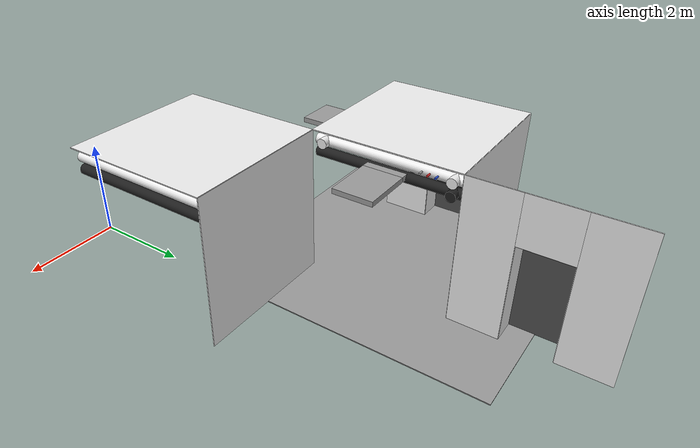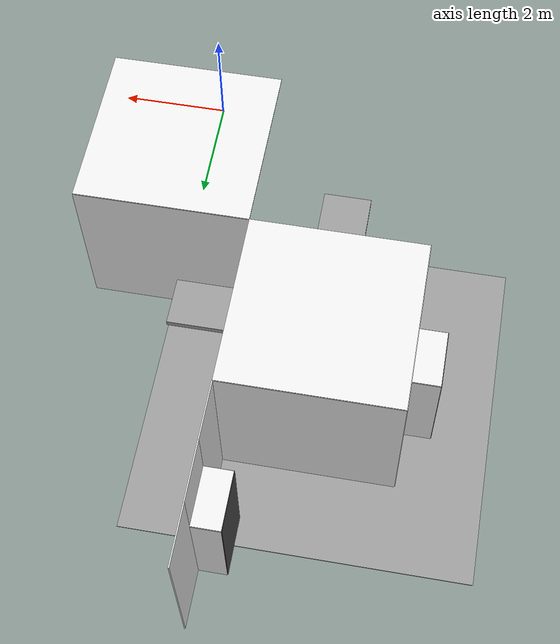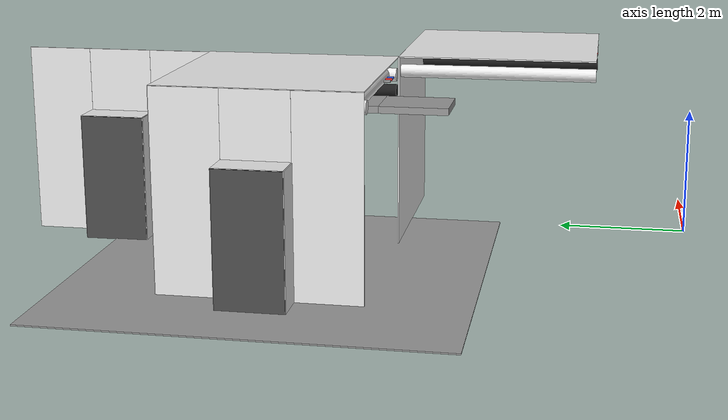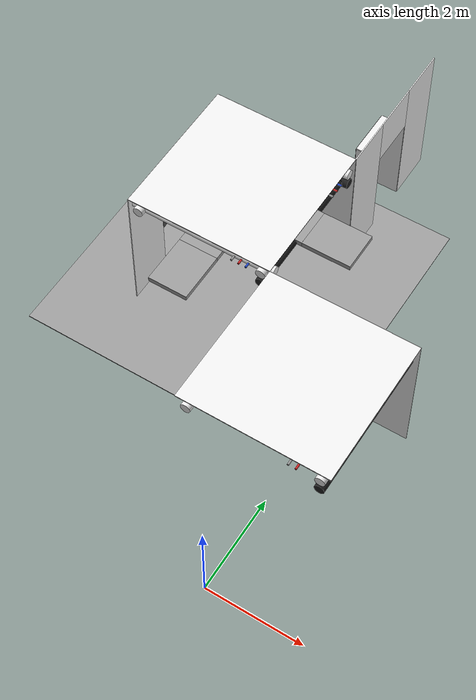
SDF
<sdf version="1.6">
 <world name="default">
  <model name="wall_front_0_1_0_3">
   <static>1</static>
   <pose>0.0 4.5 1.5 0.0 0.0 0.0</pose>
   <link name="link">
    <collision name="collision"><geometry><box><size>3.0 0.02 3.0</size></box></geometry></collision>
    <visual name="visual">
     <material>
      <script><name>Gazebo/White</name><uri>file://media/materials/scripts/gazebo.material</uri></script>
     </material>
     <geometry><box><size>3.0 0.02 3.0</size></box></geometry>
    </visual>
   </link>
  </model>
  <model name="wall_top_0_1_0_3">
   <static>1</static>
   <pose>0.0 3.0 3.0 1.57 0.0 0.0</pose>
   <link name="link">
    <collision name="collision"><geometry><box><size>3.0 0.02 3.0</size></box></geometry></collision>
    <visual name="visual">
     <material>
      <script><name>Gazebo/White</name><uri>file://media/materials/scripts/gazebo.material</uri></script>
     </material>
     <geometry><box><size>3.0 0.02 3.0</size></box></geometry>
    </visual>
   </link>
  </model>
  <model name="white_pipe_left_0_1_0_3">
   <static>1</static>
   <pose>0.0 3.0 2.76 0.0 0.0 0.0</pose>
   <link name="link_0">
    <visual name="visual">
     <pose>-1.3 0 0 1.57 0 0</pose>
     <geometry><cylinder><radius>0.1</radius><length>3.0</length></cylinder></geometry>
     <material>
      <script><uri>file://media/materials/scripts/gazebo.material</uri><name>Gazebo/White</name></script>
     </material>
    </visual>
    <collision name="collision">
     <pose>-1.3 0 0 1.57 0 0</pose>
     <geometry><cylinder><radius>0.1</radius><length>3.0</length></cylinder></geometry>
    </collision>
   </link>
  </model>
  <model name="white_pipe_right_0_1_0_3">
   <static>1</static>
   <pose>0.0 3.0 2.76 0.0 0.0 0.0</pose>
   <link name="link_0">
    <visual name="visual">
     <pose>1.3 0 0 1.57 0 0</pose>
     <geometry><cylinder><radius>0.1</radius><length>3.0</length></cylinder></geometry>
     <material>
      <script><uri>file://media/materials/scripts/gazebo.material</uri><name>Gazebo/White</name></script>
     </material>
    </visual>
    <collision name="collision">
     <pose>1.3 0 0 1.57 0 0</pose>
     <geometry><cylinder><radius>0.1</radius><length>3.0</length></cylinder></geometry>
    </collision>
   </link>
  </model>
  <model name="black_pipe_right_0_1_0_3">
   <static>1</static>
   <pose>0.0 3.0 2.76 0.0 0.0 0.0</pose>
   <link name="link_0">
    <visual name="visual">
     <pose>1.3 0 -0.25 1.57 0 0</pose>
     <geometry><cylinder><radius>0.1</radius><length>3.0</length></cylinder></geometry>
     <material>
      <script><uri>file://media/materials/scripts/gazebo.material</uri><name>Gazebo/Black</name></script>
     </material>
    </visual>
    <collision name="collision">
     <pose>1.3 0 -0.25 1.57 0 0</pose>
     <geometry><cylinder><radius>0.1</radius><length>3.0</length></cylinder></geometry>
    </collision>
   </link>
  </model>
  <model name="grey_pipe_right_0_1_0_3">
   <static>1</static>
   <pose>0.0 3.0 2.76 0.0 0.0 0.0</pose>
   <link name="link_0">
    <visual name="visual">
     <pose>0.7 0 0 1.57 0 0</pose>
     <geometry><cylinder><radius>0.02</radius><length>3.0</length></cylinder></geometry>
     <material>
      <script><uri>file://media/materials/scripts/gazebo.material</uri><name>Gazebo/Grey</name></script>
     </material>
    </visual>
    <collision name="collision">
     <pose>0.7 0 0 1.57 0 0</pose>
     <geometry><cylinder><radius>0.02</radius><length>3.0</length></cylinder></geometry>
    </collision>
   </link>
  </model>
  <model name="red_pipe_right_0_1_0_3">
   <static>1</static>
   <pose>0.0 3.0 2.76 0.0 0.0 0.0</pose>
   <link name="link_0">
    <visual name="visual">
     <pose>0.85 0 0 1.57 0 0</pose>
     <geometry><cylinder><radius>0.02</radius><length>3.0</length></cylinder></geometry>
     <material>
      <script><uri>file://media/materials/scripts/gazebo.material</uri><name>Gazebo/Red</name></script>
     </material>
    </visual>
    <collision name="collision">
     <pose>0.85 0 0 1.57 0 0</pose>
     <geometry><cylinder><radius>0.02</radius><length>3.0</length></cylinder></geometry>
    </collision>
   </link>
  </model>
  <model name="ceiling_1_-1_1_1_2">
   <pose>-3.0 4.0 2.55 0.0 0.0 3.14</pose>
   <link name="link_1">
    <visual name="visual">
     <geometry><box><size>0.8 1 0.1</size></box></geometry>
     <material>
      <script><uri>file://media/materials/scripts/gazebo.material</uri><name>Gazebo/Grey</name></script>
     </material>
    </visual>
    <collision name="collision"><geometry><box><size>0.8 1 0.1</size></box></geometry></collision>
   </link>
   <static>1</static>
  </model>
  <model name="wall_front_-1_2_0_2">
   <static>1</static>
   <pose>-3.0 7.5 1.5 0.0 0.0 0.0</pose>
   <link name="link">
    <collision name="collision"><geometry><box><size>3.0 0.02 3.0</size></box></geometry></collision>
    <visual name="visual">
     <material>
      <script><name>Gazebo/White</name><uri>file://media/materials/scripts/gazebo.material</uri></script>
     </material>
     <geometry><box><size>3.0 0.02 3.0</size></box></geometry>
    </visual>
   </link>
  </model>
  <model name="wall_top_-1_2_0_2">
   <static>1</static>
   <pose>-3.0 6.0 3.0 1.57 0.0 0.0</pose>
   <link name="link">
    <collision name="collision"><geometry><box><size>3.0 0.02 3.0</size></box></geometry></collision>
    <visual name="visual">
     <material>
      <script><name>Gazebo/White</name><uri>file://media/materials/scripts/gazebo.material</uri></script>
     </material>
     <geometry><box><size>3.0 0.02 3.0</size></box></geometry>
    </visual>
   </link>
  </model>
  <model name="ceiling_1_-1_2_0_2">
   <pose>-3.0 5.0 2.55 0.0 0.0 0.0</pose>
   <link name="link_1">
    <visual name="visual">
     <geometry><box><size>0.8 1 0.1</size></box></geometry>
     <material>
      <script><uri>file://media/materials/scripts/gazebo.material</uri><name>Gazebo/Grey</name></script>
     </material>
    </visual>
    <collision name="collision"><geometry><box><size>0.8 1 0.1</size></box></geometry></collision>
   </link>
   <static>1</static>
  </model>
  <model name="ceiling_1_-1_2_1_2">
   <pose>-2.0 6.0 2.55 0.0 0.0 1.57</pose>
   <link name="link_1">
    <visual name="visual">
     <geometry><box><size>0.8 1 0.1</size></box></geometry>
     <material>
      <script><uri>file://media/materials/scripts/gazebo.material</uri><name>Gazebo/Grey</name></script>
     </material>
    </visual>
    <collision name="collision"><geometry><box><size>0.8 1 0.1</size></box></geometry></collision>
   </link>
   <static>1</static>
  </model>
  <model name="white_pipe_left_-1_2_0_2">
   <static>1</static>
   <pose>-3.0 6.0 2.76 0.0 0.0 0.0</pose>
   <link name="link_0">
    <visual name="visual">
     <pose>-1.3 0 0 1.57 0 0</pose>
     <geometry><cylinder><radius>0.1</radius><length>3.0</length></cylinder></geometry>
     <material>
      <script><uri>file://media/materials/scripts/gazebo.material</uri><name>Gazebo/White</name></script>
     </material>
    </visual>
    <collision name="collision">
     <pose>-1.3 0 0 1.57 0 0</pose>
     <geometry><cylinder><radius>0.1</radius><length>3.0</length></cylinder></geometry>
    </collision>
   </link>
  </model>
  <model name="white_pipe_right_-1_2_0_2">
   <static>1</static>
   <pose>-3.0 6.0 2.76 0.0 0.0 0.0</pose>
   <link name="link_0">
    <visual name="visual">
     <pose>1.3 0 0 1.57 0 0</pose>
     <geometry><cylinder><radius>0.1</radius><length>3.0</length></cylinder></geometry>
     <material>
      <script><uri>file://media/materials/scripts/gazebo.material</uri><name>Gazebo/White</name></script>
     </material>
    </visual>
    <collision name="collision">
     <pose>1.3 0 0 1.57 0 0</pose>
     <geometry><cylinder><radius>0.1</radius><length>3.0</length></cylinder></geometry>
    </collision>
   </link>
  </model>
  <model name="black_pipe_right_-1_2_0_2">
   <static>1</static>
   <pose>-3.0 6.0 2.76 0.0 0.0 0.0</pose>
   <link name="link_0">
    <visual name="visual">
     <pose>1.3 0 -0.25 1.57 0 0</pose>
     <geometry><cylinder><radius>0.1</radius><length>3.0</length></cylinder></geometry>
     <material>
      <script><uri>file://media/materials/scripts/gazebo.material</uri><name>Gazebo/Black</name></script>
     </material>
    </visual>
    <collision name="collision">
     <pose>1.3 0 -0.25 1.57 0 0</pose>
     <geometry><cylinder><radius>0.1</radius><length>3.0</length></cylinder></geometry>
    </collision>
   </link>
  </model>
  <model name="grey_pipe_right_-1_2_0_2">
   <static>1</static>
   <pose>-3.0 6.0 2.76 0.0 0.0 0.0</pose>
   <link name="link_0">
    <visual name="visual">
     <pose>0.7 0 0 1.57 0 0</pose>
     <geometry><cylinder><radius>0.02</radius><length>3.0</length></cylinder></geometry>
     <material>
      <script><uri>file://media/materials/scripts/gazebo.material</uri><name>Gazebo/Grey</name></script>
     </material>
    </visual>
    <collision name="collision">
     <pose>0.7 0 0 1.57 0 0</pose>
     <geometry><cylinder><radius>0.02</radius><length>3.0</length></cylinder></geometry>
    </collision>
   </link>
  </model>
  <model name="red_pipe_right_-1_2_0_2">
   <static>1</static>
   <pose>-3.0 6.0 2.76 0.0 0.0 0.0</pose>
   <link name="link_0">
    <visual name="visual">
     <pose>0.85 0 0 1.57 0 0</pose>
     <geometry><cylinder><radius>0.02</radius><length>3.0</length></cylinder></geometry>
     <material>
      <script><uri>file://media/materials/scripts/gazebo.material</uri><name>Gazebo/Red</name></script>
     </material>
    </visual>
    <collision name="collision">
     <pose>0.85 0 0 1.57 0 0</pose>
     <geometry><cylinder><radius>0.02</radius><length>3.0</length></cylinder></geometry>
    </collision>
   </link>
  </model>
  <model name="blue_pipe_right_-1_2_0_2">
   <static>1</static>
   <pose>-3.0 6.0 2.76 0.0 0.0 0.0</pose>
   <link name="link_0">
    <visual name="visual">
     <pose>1 0 0 1.57 0 0</pose>
     <geometry><cylinder><radius>0.02</radius><length>3.0</length></cylinder></geometry>
     <material>
      <script><uri>file://media/materials/scripts/gazebo.material</uri><name>Gazebo/Blue</name></script>
     </material>
    </visual>
    <collision name="collision">
     <pose>1 0 0 1.57 0 0</pose>
     <geometry><cylinder><radius>0.02</radius><length>3.0</length></cylinder></geometry>
    </collision>
   </link>
  </model>
  <model name="white_pipe_left_1_-1_2_0_2">
   <static>1</static>
   <pose>-3.0 6.0 2.76 0.0 0.0 1.57</pose>
   <link name="link_0">
    <visual name="visual">
     <pose>-1.3 0 0 1.57 0 0</pose>
     <geometry><cylinder><radius>0.1</radius><length>3.0</length></cylinder></geometry>
     <material>
      <script><uri>file://media/materials/scripts/gazebo.material</uri><name>Gazebo/White</name></script>
     </material>
    </visual>
    <collision name="collision">
     <pose>-1.3 0 0 1.57 0 0</pose>
     <geometry><cylinder><radius>0.1</radius><length>3.0</length></cylinder></geometry>
    </collision>
   </link>
  </model>
  <model name="white_pipe_right_1_-1_2_0_2">
   <static>1</static>
   <pose>-3.0 6.0 2.76 0.0 0.0 1.57</pose>
   <link name="link_0">
    <visual name="visual">
     <pose>1.3 0 0 1.57 0 0</pose>
     <geometry><cylinder><radius>0.1</radius><length>3.0</length></cylinder></geometry>
     <material>
      <script><uri>file://media/materials/scripts/gazebo.material</uri><name>Gazebo/White</name></script>
     </material>
    </visual>
    <collision name="collision">
     <pose>1.3 0 0 1.57 0 0</pose>
     <geometry><cylinder><radius>0.1</radius><length>3.0</length></cylinder></geometry>
    </collision>
   </link>
  </model>
  <model name="black_pipe_right_1_-1_2_0_2">
   <static>1</static>
   <pose>-3.0 6.0 2.76 0.0 0.0 1.57</pose>
   <link name="link_0">
    <visual name="visual">
     <pose>1.3 0 -0.25 1.57 0 0</pose>
     <geometry><cylinder><radius>0.1</radius><length>3.0</length></cylinder></geometry>
     <material>
      <script><uri>file://media/materials/scripts/gazebo.material</uri><name>Gazebo/Black</name></script>
     </material>
    </visual>
    <collision name="collision">
     <pose>1.3 0 -0.25 1.57 0 0</pose>
     <geometry><cylinder><radius>0.1</radius><length>3.0</length></cylinder></geometry>
    </collision>
   </link>
  </model>
  <model name="grey_pipe_right_1_-1_2_0_2">
   <static>1</static>
   <pose>-3.0 6.0 2.76 0.0 0.0 1.57</pose>
   <link name="link_0">
    <visual name="visual">
     <pose>0.7 0 0 1.57 0 0</pose>
     <geometry><cylinder><radius>0.02</radius><length>3.0</length></cylinder></geometry>
     <material>
      <script><uri>file://media/materials/scripts/gazebo.material</uri><name>Gazebo/Grey</name></script>
     </material>
    </visual>
    <collision name="collision">
     <pose>0.7 0 0 1.57 0 0</pose>
     <geometry><cylinder><radius>0.02</radius><length>3.0</length></cylinder></geometry>
    </collision>
   </link>
  </model>
  <model name="red_pipe_right_1_-1_2_0_2">
   <static>1</static>
   <pose>-3.0 6.0 2.76 0.0 0.0 1.57</pose>
   <link name="link_0">
    <visual name="visual">
     <pose>0.85 0 0 1.57 0 0</pose>
     <geometry><cylinder><radius>0.02</radius><length>3.0</length></cylinder></geometry>
     <material>
      <script><uri>file://media/materials/scripts/gazebo.material</uri><name>Gazebo/Red</name></script>
     </material>
    </visual>
    <collision name="collision">
     <pose>0.85 0 0 1.57 0 0</pose>
     <geometry><cylinder><radius>0.02</radius><length>3.0</length></cylinder></geometry>
    </collision>
   </link>
  </model>
  <model name="blue_pipe_right_1_-1_2_0_2">
   <static>1</static>
   <pose>-3.0 6.0 2.76 0.0 0.0 1.57</pose>
   <link name="link_0">
    <visual name="visual">
     <pose>1 0 0 1.57 0 0</pose>
     <geometry><cylinder><radius>0.02</radius><length>3.0</length></cylinder></geometry>
     <material>
      <script><uri>file://media/materials/scripts/gazebo.material</uri><name>Gazebo/Blue</name></script>
     </material>
    </visual>
    <collision name="collision">
     <pose>1 0 0 1.57 0 0</pose>
     <geometry><cylinder><radius>0.02</radius><length>3.0</length></cylinder></geometry>
    </collision>
   </link>
  </model>
  <model name="wall_left_front_left_-1_2_0_2">
   <static>1</static>
   <pose>-4.5 7.0 1.5 0.0 0.0 1.57</pose>
   <link name="link">
    <collision name="collision"><geometry><box><size>1.0 0.02 3.0</size></box></geometry></collision>
    <visual name="visual">
     <material>
      <script><name>Gazebo/White</name><uri>file://media/materials/scripts/gazebo.material</uri></script>
     </material>
     <geometry><box><size>1.0 0.02 3.0</size></box></geometry>
    </visual>
   </link>
  </model>
  <model name="wall_left_front_right_-1_2_0_2">
   <static>1</static>
   <pose>-4.5 5.0 1.5 0.0 0.0 1.57</pose>
   <link name="link">
    <collision name="collision"><geometry><box><size>1.0 0.02 3.0</size></box></geometry></collision>
    <visual name="visual">
     <material>
      <script><name>Gazebo/White</name><uri>file://media/materials/scripts/gazebo.material</uri></script>
     </material>
     <geometry><box><size>1.0 0.02 3.0</size></box></geometry>
    </visual>
   </link>
  </model>
  <model name="wall_left_front_up_-1_2_0_2">
   <static>1</static>
   <pose>-4.5 6.0 2.5 0.0 0.0 1.57</pose>
   <link name="link">
    <collision name="collision"><geometry><box><size>1.0 0.02 1.0</size></box></geometry></collision>
    <visual name="visual">
     <material>
      <script><name>Gazebo/White</name><uri>file://media/materials/scripts/gazebo.material</uri></script>
     </material>
     <geometry><box><size>1.0 0.02 1.0</size></box></geometry>
    </visual>
   </link>
  </model>
  <model name="wall_left_inside_back_-1_2_0_2">
   <static>1</static>
   <pose>-5.0 6.0 1.0 0.0 0.0 1.57</pose>
   <link name="link">
    <collision name="collision"><geometry><box><size>1 0.02 2</size></box></geometry></collision>
    <visual name="visual">
     <material>
      <script><name>Gazebo/DarkGrey</name><uri>file://media/materials/scripts/gazebo.material</uri></script>
     </material>
     <geometry><box><size>1 0.02 2</size></box></geometry>
    </visual>
   </link>
  </model>
  <model name="wall_left_inside_left_-1_2_0_2">
   <static>1</static>
   <pose>-4.75 6.5 1.0 0.0 0.0 0.0</pose>
   <link name="link">
    <collision name="collision"><geometry><box><size>0.5 0.02 2</size></box></geometry></collision>
    <visual name="visual">
     <material>
      <script><name>Gazebo/White</name><uri>file://media/materials/scripts/gazebo.material</uri></script>
     </material>
     <geometry><box><size>0.5 0.02 2</size></box></geometry>
    </visual>
   </link>
  </model>
  <model name="wall_left_inside_right_-1_2_0_2">
   <static>1</static>
   <pose>-4.75 5.5 1.0 0.0 0.0 0.0</pose>
   <link name="link">
    <collision name="collision"><geometry><box><size>0.5 0.02 2</size></box></geometry></collision>
    <visual name="visual">
     <material>
      <script><name>Gazebo/White</name><uri>file://media/materials/scripts/gazebo.material</uri></script>
     </material>
     <geometry><box><size>0.5 0.02 2</size></box></geometry>
    </visual>
   </link>
  </model>
  <model name="wall_left_inside_top_-1_2_0_2">
   <static>1</static>
   <pose>-4.75 6.0 2.0 1.57 0.0 1.57</pose>
   <link name="link">
    <collision name="collision"><geometry><box><size>1 0.02 0.5</size></box></geometry></collision>
    <visual name="visual">
     <material>
      <script><name>Gazebo/White</name><uri>file://media/materials/scripts/gazebo.material</uri></script>
     </material>
     <geometry><box><size>1 0.02 0.5</size></box></geometry>
    </visual>
   </link>
  </model>
  <model name="wall_bottom_-1_2_0_2">
   <static>1</static>
   <pose>-3.0 6.0 0.0 0.0 0.0 0.0</pose>
   <link name="link">
    <collision name="collision"><geometry><box><size>6.0 6.0 0.02</size></box></geometry></collision>
    <visual name="visual">
     <material>
      <script><name>Gazebo/Grey</name><uri>file://media/materials/scripts/gazebo.material</uri></script>
     </material>
     <geometry><box><size>6.0 6.0 0.02</size></box></geometry>
    </visual>
   </link>
  </model>
  <model name="ceiling_1_0_2_0_3">
   <pose>-1.0 6.0 2.55 0.0 0.0 -1.57</pose>
   <link name="link_1">
    <visual name="visual">
     <geometry><box><size>0.8 1 0.1</size></box></geometry>
     <material>
      <script><uri>file://media/materials/scripts/gazebo.material</uri><name>Gazebo/Grey</name></script>
     </material>
    </visual>
    <collision name="collision"><geometry><box><size>0.8 1 0.1</size></box></geometry></collision>
   </link>
   <static>1</static>
  </model>
  <model name="wall_left_front_left_0_3_0_2">
   <static>1</static>
   <pose>-1.5 10.0 1.5 0.0 0.0 1.57</pose>
   <link name="link">
    <collision name="collision"><geometry><box><size>1.0 0.02 3.0</size></box></geometry></collision>
    <visual name="visual">
     <material>
      <script><name>Gazebo/White</name><uri>file://media/materials/scripts/gazebo.material</uri></script>
     </material>
     <geometry><box><size>1.0 0.02 3.0</size></box></geometry>
    </visual>
   </link>
  </model>
  <model name="wall_left_front_right_0_3_0_2">
   <static>1</static>
   <pose>-1.5 8.0 1.5 0.0 0.0 1.57</pose>
   <link name="link">
    <collision name="collision"><geometry><box><size>1.0 0.02 3.0</size></box></geometry></collision>
    <visual name="visual">
     <material>
      <script><name>Gazebo/White</name><uri>file://media/materials/scripts/gazebo.material</uri></script>
     </material>
     <geometry><box><size>1.0 0.02 3.0</size></box></geometry>
    </visual>
   </link>
  </model>
  <model name="wall_left_front_up_0_3_0_2">
   <static>1</static>
   <pose>-1.5 9.0 2.5 0.0 0.0 1.57</pose>
   <link name="link">
    <collision name="collision"><geometry><box><size>1.0 0.02 1.0</size></box></geometry></collision>
    <visual name="visual">
     <material>
      <script><name>Gazebo/White</name><uri>file://media/materials/scripts/gazebo.material</uri></script>
     </material>
     <geometry><box><size>1.0 0.02 1.0</size></box></geometry>
    </visual>
   </link>
  </model>
  <model name="wall_left_inside_back_0_3_0_2">
   <static>1</static>
   <pose>-2.0 9.0 1.0 0.0 0.0 1.57</pose>
   <link name="link">
    <collision name="collision"><geometry><box><size>1 0.02 2</size></box></geometry></collision>
    <visual name="visual">
     <material>
      <script><name>Gazebo/DarkGrey</name><uri>file://media/materials/scripts/gazebo.material</uri></script>
     </material>
     <geometry><box><size>1 0.02 2</size></box></geometry>
    </visual>
   </link>
  </model>
  <model name="wall_left_inside_left_0_3_0_2">
   <static>1</static>
   <pose>-1.75 9.5 1.0 0.0 0.0 0.0</pose>
   <link name="link">
    <collision name="collision"><geometry><box><size>0.5 0.02 2</size></box></geometry></collision>
    <visual name="visual">
     <material>
      <script><name>Gazebo/White</name><uri>file://media/materials/scripts/gazebo.material</uri></script>
     </material>
     <geometry><box><size>0.5 0.02 2</size></box></geometry>
    </visual>
   </link>
  </model>
  <model name="wall_left_inside_right_0_3_0_2">
   <static>1</static>
   <pose>-1.75 8.5 1.0 0.0 0.0 0.0</pose>
   <link name="link">
    <collision name="collision"><geometry><box><size>0.5 0.02 2</size></box></geometry></collision>
    <visual name="visual">
     <material>
      <script><name>Gazebo/White</name><uri>file://media/materials/scripts/gazebo.material</uri></script>
     </material>
     <geometry><box><size>0.5 0.02 2</size></box></geometry>
    </visual>
   </link>
  </model>
  <model name="wall_left_inside_top_0_3_0_2">
   <static>1</static>
   <pose>-1.75 9.0 2.0 1.57 0.0 1.57</pose>
   <link name="link">
    <collision name="collision"><geometry><box><size>1 0.02 0.5</size></box></geometry></collision>
    <visual name="visual">
     <material>
      <script><name>Gazebo/White</name><uri>file://media/materials/scripts/gazebo.material</uri></script>
     </material>
     <geometry><box><size>1 0.02 0.5</size></box></geometry>
    </visual>
   </link>
  </model>
 </world>
</sdf>
